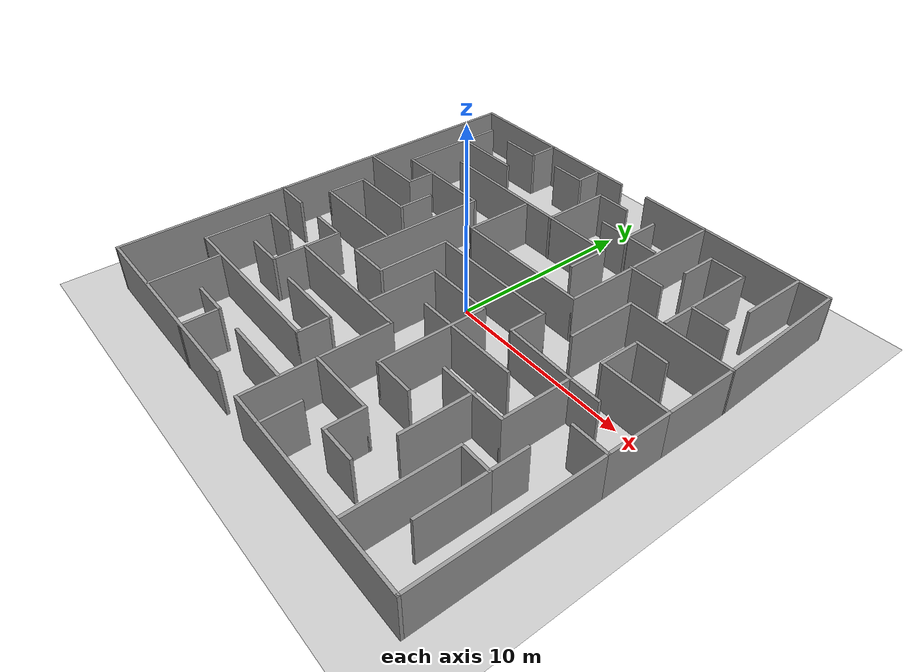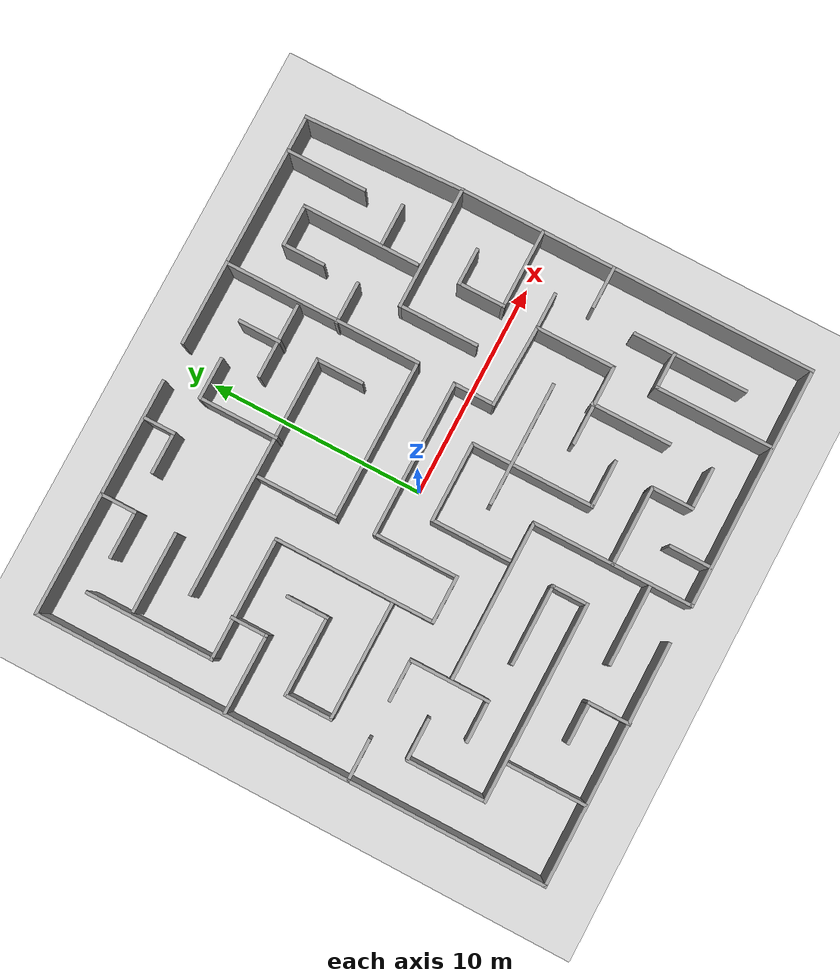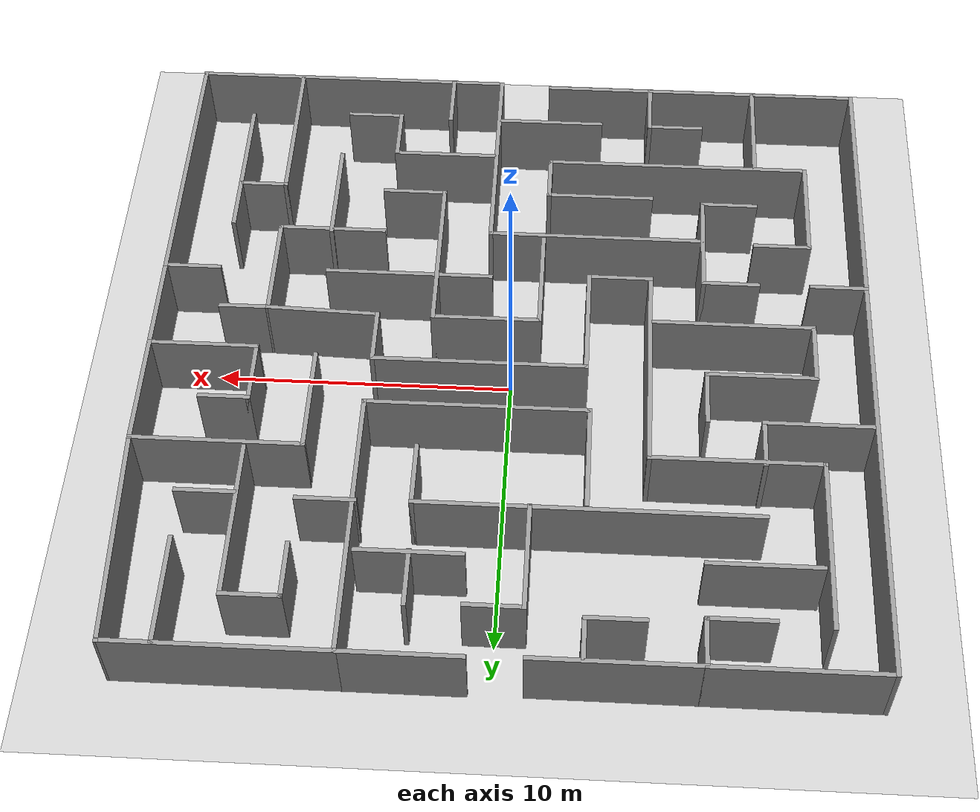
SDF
<sdf version="1.7">
 <world name="default">
  <light name="sun" type="directional">
   <pose>0 0 10 0 -0 0</pose>
   <diffuse>0.8 0.8 0.8 1</diffuse>
   <specular>0.2 0.2 0.2 1</specular>
   <attenuation>
    <range>1000</range>
    <constant>0.9</constant>
    <linear>0.01</linear>
    <quadratic>0.001</quadratic>
   </attenuation>
   <direction>-0.5 0.1 -0.9</direction>
   <spot><inner_angle>0</inner_angle><outer_angle>0</outer_angle><falloff>0</falloff></spot>
  </light>
  <model name="ground_plane">
   <static>1</static>
   <link name="link">
    <collision name="collision">
     <geometry><plane><normal>0 0 1</normal><size>100 100</size></plane></geometry>
     <surface><friction><ode><mu>100</mu><mu2>50</mu2></ode></friction></surface>
    </collision>
    <visual name="visual">
     <cast_shadows>0</cast_shadows>
     <geometry><plane><normal>0 0 1</normal><size>100 100</size></plane></geometry>
     <material>
      <script><uri>file://media/materials/scripts/gazebo.material</uri><name>Gazebo/Grey</name></script>
     </material>
    </visual>
   </link>
  </model>
  <gravity>0 0 -9.8</gravity>
  <magnetic_field>6e-06 2.3e-05 -4.2e-05</magnetic_field>
  <atmosphere type="adiabatic"/>
  <physics type="ode">
   <max_step_size>0.001</max_step_size>
   <real_time_factor>1</real_time_factor>
   <real_time_update_rate>1000</real_time_update_rate>
  </physics>
  <scene><ambient>0.4 0.4 0.4 1</ambient><background>0.7 0.7 0.7 1</background><shadows>1</shadows></scene>
  <audio><device>default</device></audio>
  <spherical_coordinates>
   <surface_model>EARTH_WGS84</surface_model>
   <latitude_deg>0</latitude_deg>
   <longitude_deg>0</longitude_deg>
   <elevation>0</elevation>
   <heading_deg>0</heading_deg>
  </spherical_coordinates>
  <model name="project2narrowed">
   <pose>0.024169 -0.346269 0 0 -0 0</pose>
   <link name="Wall_10">
    <collision name="Wall_10_Collision">
     <geometry><box><size>2 0.15 2.5</size></box></geometry>
     <pose>0 0 1.25 0 -0 0</pose>
    </collision>
    <visual name="Wall_10_Visual">
     <pose>0 0 1.25 0 -0 0</pose>
     <geometry><box><size>2 0.15 2.5</size></box></geometry>
     <material>
      <script><uri>file://media/materials/scripts/gazebo.material</uri><name>Gazebo/Grey</name></script>
      <ambient>1 1 1 1</ambient>
     </material>
     <meta><layer>0</layer></meta>
    </visual>
    <pose>-9.22593 -4.48458 0 0 -0 3.14159</pose>
   </link>
   <link name="Wall_101">
    <collision name="Wall_101_Collision">
     <geometry><box><size>2 0.15 2.5</size></box></geometry>
     <pose>0 0 1.25 0 -0 0</pose>
    </collision>
    <visual name="Wall_101_Visual">
     <pose>0 0 1.25 0 -0 0</pose>
     <geometry><box><size>2 0.15 2.5</size></box></geometry>
     <material>
      <script><uri>file://media/materials/scripts/gazebo.material</uri><name>Gazebo/Grey</name></script>
      <ambient>1 1 1 1</ambient>
     </material>
     <meta><layer>0</layer></meta>
    </visual>
    <pose>-0.022271 10.1757 0 0 -0 0</pose>
   </link>
   <link name="Wall_104">
    <collision name="Wall_104_Collision">
     <geometry><box><size>3.5 0.15 2.5</size></box></geometry>
     <pose>0 0 1.25 0 -0 0</pose>
    </collision>
    <visual name="Wall_104_Visual">
     <pose>0 0 1.25 0 -0 0</pose>
     <geometry><box><size>3.5 0.15 2.5</size></box></geometry>
     <material>
      <script><uri>file://media/materials/scripts/gazebo.material</uri><name>Gazebo/Grey</name></script>
      <ambient>1 1 1 1</ambient>
     </material>
     <meta><layer>0</layer></meta>
    </visual>
    <pose>2.69533 8.42693 0 0 -0 3.14159</pose>
   </link>
   <link name="Wall_106">
    <collision name="Wall_106_Collision">
     <geometry><box><size>2 0.15 2.5</size></box></geometry>
     <pose>0 0 1.25 0 -0 0</pose>
    </collision>
    <visual name="Wall_106_Visual">
     <pose>0 0 1.25 0 -0 0</pose>
     <geometry><box><size>2 0.15 2.5</size></box></geometry>
     <material>
      <script><uri>file://media/materials/scripts/gazebo.material</uri><name>Gazebo/Grey</name></script>
      <ambient>1 1 1 1</ambient>
     </material>
     <meta><layer>0</layer></meta>
    </visual>
    <pose>2.69297 9.31624 0 0 -0 1.5708</pose>
   </link>
   <link name="Wall_108">
    <collision name="Wall_108_Collision">
     <geometry><box><size>7.25 0.15 2.5</size></box></geometry>
     <pose>0 0 1.25 0 -0 0</pose>
    </collision>
    <visual name="Wall_108_Visual">
     <pose>0 0 1.25 0 -0 0</pose>
     <geometry><box><size>7.25 0.15 2.5</size></box></geometry>
     <material>
      <script><uri>file://media/materials/scripts/gazebo.material</uri><name>Gazebo/Grey</name></script>
      <ambient>1 1 1 1</ambient>
     </material>
     <meta><layer>0</layer></meta>
    </visual>
    <pose>8.1683 11.9284 0 0 -0 0</pose>
   </link>
   <link name="Wall_109">
    <collision name="Wall_109_Collision">
     <geometry><box><size>7.46577 0.15 2.5</size></box></geometry>
     <pose>0 0 1.25 0 -0 0</pose>
    </collision>
    <visual name="Wall_109_Visual">
     <pose>0 0 1.25 0 -0 0</pose>
     <geometry><box><size>7.46577 0.15 2.5</size></box></geometry>
     <material>
      <script><uri>file://media/materials/scripts/gazebo.material</uri><name>Gazebo/Grey</name></script>
      <ambient>1 1 1 1</ambient>
     </material>
     <meta><layer>0</layer></meta>
    </visual>
    <pose>11.8671 8.27351 0 0 -0 -1.5301</pose>
   </link>
   <link name="Wall_11">
    <collision name="Wall_11_Collision">
     <geometry><box><size>3.75 0.15 2.5</size></box></geometry>
     <pose>0 0 1.25 0 -0 0</pose>
    </collision>
    <visual name="Wall_11_Visual">
     <pose>0 0 1.25 0 -0 0</pose>
     <geometry><box><size>3.75 0.15 2.5</size></box></geometry>
     <material>
      <script><uri>file://media/materials/scripts/gazebo.material</uri><name>Gazebo/Grey</name></script>
      <ambient>1 1 1 1</ambient>
     </material>
     <meta><layer>0</layer></meta>
    </visual>
    <pose>-10.1509 -6.28458 0 0 -0 -1.5708</pose>
   </link>
   <link name="Wall_111">
    <collision name="Wall_111_Collision">
     <geometry><box><size>3.75 0.15 2.5</size></box></geometry>
     <pose>0 0 1.25 0 -0 0</pose>
    </collision>
    <visual name="Wall_111_Visual">
     <pose>0 0 1.25 0 -0 0</pose>
     <geometry><box><size>3.75 0.15 2.5</size></box></geometry>
     <material>
      <script><uri>file://media/materials/scripts/gazebo.material</uri><name>Gazebo/Grey</name></script>
      <ambient>1 1 1 1</ambient>
     </material>
     <meta><layer>0</layer></meta>
    </visual>
    <pose>10.0805 10.0887 0 0 -0 -1.5708</pose>
   </link>
   <link name="Wall_113">
    <collision name="Wall_113_Collision">
     <geometry><box><size>2 0.15 2.5</size></box></geometry>
     <pose>0 0 1.25 0 -0 0</pose>
    </collision>
    <visual name="Wall_113_Visual">
     <pose>0 0 1.25 0 -0 0</pose>
     <geometry><box><size>2 0.15 2.5</size></box></geometry>
     <material>
      <script><uri>file://media/materials/scripts/gazebo.material</uri><name>Gazebo/Grey</name></script>
      <ambient>1 1 1 1</ambient>
     </material>
     <meta><layer>0</layer></meta>
    </visual>
    <pose>6.44027 9.24486 0 0 -0 1.5708</pose>
   </link>
   <link name="Wall_114">
    <collision name="Wall_114_Collision">
     <geometry><box><size>2 0.15 2.5</size></box></geometry>
     <pose>0 0 1.25 0 -0 0</pose>
    </collision>
    <visual name="Wall_114_Visual">
     <pose>0 0 1.25 0 -0 0</pose>
     <geometry><box><size>2 0.15 2.5</size></box></geometry>
     <material>
      <script><uri>file://media/materials/scripts/gazebo.material</uri><name>Gazebo/Grey</name></script>
      <ambient>1 1 1 1</ambient>
     </material>
     <meta><layer>0</layer></meta>
    </visual>
    <pose>7.36527 10.1699 0 0 -0 0</pose>
   </link>
   <link name="Wall_115">
    <collision name="Wall_115_Collision">
     <geometry><box><size>5.5 0.15 2.5</size></box></geometry>
     <pose>0 0 1.25 0 -0 0</pose>
    </collision>
    <visual name="Wall_115_Visual">
     <pose>0 0 1.25 0 -0 0</pose>
     <geometry><box><size>5.5 0.15 2.5</size></box></geometry>
     <material>
      <script><uri>file://media/materials/scripts/gazebo.material</uri><name>Gazebo/Grey</name></script>
      <ambient>1 1 1 1</ambient>
     </material>
     <meta><layer>0</layer></meta>
    </visual>
    <pose>8.29027 7.49486 0 0 -0 -1.5708</pose>
   </link>
   <link name="Wall_117">
    <collision name="Wall_117_Collision">
     <geometry><box><size>2 0.15 2.5</size></box></geometry>
     <pose>0 0 1.25 0 -0 0</pose>
    </collision>
    <visual name="Wall_117_Visual">
     <pose>0 0 1.25 0 -0 0</pose>
     <geometry><box><size>2 0.15 2.5</size></box></geometry>
     <material>
      <script><uri>file://media/materials/scripts/gazebo.material</uri><name>Gazebo/Grey</name></script>
      <ambient>1 1 1 1</ambient>
     </material>
     <meta><layer>0</layer></meta>
    </visual>
    <pose>9.29245 6.53543 0 0 -0 0</pose>
   </link>
   <link name="Wall_119">
    <collision name="Wall_119_Collision">
     <geometry><box><size>2 0.15 2.5</size></box></geometry>
     <pose>0 0 1.25 0 -0 0</pose>
    </collision>
    <visual name="Wall_119_Visual">
     <pose>0 0 1.25 0 -0 0</pose>
     <geometry><box><size>2 0.15 2.5</size></box></geometry>
     <material>
      <script><uri>file://media/materials/scripts/gazebo.material</uri><name>Gazebo/Grey</name></script>
      <ambient>1 1 1 1</ambient>
     </material>
     <meta><layer>0</layer></meta>
    </visual>
    <pose>5.47377 6.6425 0 0 -0 0</pose>
   </link>
   <link name="Wall_12">
    <collision name="Wall_12_Collision">
     <geometry><box><size>9.25 0.15 2.5</size></box></geometry>
     <pose>0 0 1.25 0 -0 0</pose>
    </collision>
    <visual name="Wall_12_Visual">
     <pose>0 0 1.25 0 -0 0</pose>
     <geometry><box><size>9.25 0.15 2.5</size></box></geometry>
     <material>
      <script><uri>file://media/materials/scripts/gazebo.material</uri><name>Gazebo/Grey</name></script>
      <ambient>1 1 1 1</ambient>
     </material>
     <meta><layer>0</layer></meta>
    </visual>
    <pose>-5.60093 -8.08458 0 0 -0 0</pose>
   </link>
   <link name="Wall_122">
    <collision name="Wall_122_Collision">
     <geometry><box><size>2 0.15 2.5</size></box></geometry>
     <pose>0 0 1.25 0 -0 0</pose>
    </collision>
    <visual name="Wall_122_Visual">
     <pose>0 0 1.25 0 -0 0</pose>
     <geometry><box><size>2 0.15 2.5</size></box></geometry>
     <material>
      <script><uri>file://media/materials/scripts/gazebo.material</uri><name>Gazebo/Grey</name></script>
      <ambient>1 1 1 1</ambient>
     </material>
     <meta><layer>0</layer></meta>
    </visual>
    <pose>4.53111 0.132632 0 0 -0 -1.5708</pose>
   </link>
   <link name="Wall_123">
    <collision name="Wall_123_Collision">
     <geometry><box><size>3.88247 0.15 2.5</size></box></geometry>
     <pose>0 0 1.25 0 -0 0</pose>
    </collision>
    <visual name="Wall_123_Visual">
     <pose>0 0 1.25 0 -0 0</pose>
     <geometry><box><size>3.88247 0.15 2.5</size></box></geometry>
     <material>
      <script><uri>file://media/materials/scripts/gazebo.material</uri><name>Gazebo/Grey</name></script>
      <ambient>1 1 1 1</ambient>
     </material>
     <meta><layer>0</layer></meta>
    </visual>
    <pose>6.39646 -0.849941 0 0 -0 -0.030855</pose>
   </link>
   <link name="Wall_13">
    <collision name="Wall_13_Collision">
     <geometry><box><size>1.75 0.15 2.5</size></box></geometry>
     <pose>0 0 1.25 0 -0 0</pose>
    </collision>
    <visual name="Wall_13_Visual">
     <pose>0 0 1.25 0 -0 0</pose>
     <geometry><box><size>1.75 0.15 2.5</size></box></geometry>
     <material>
      <script><uri>file://media/materials/scripts/gazebo.material</uri><name>Gazebo/Grey</name></script>
      <ambient>1 1 1 1</ambient>
     </material>
     <meta><layer>0</layer></meta>
    </visual>
    <pose>-1.05093 -7.28458 0 0 -0 1.5708</pose>
   </link>
   <link name="Wall_14">
    <collision name="Wall_14_Collision">
     <geometry><box><size>3.75 0.15 2.5</size></box></geometry>
     <pose>0 0 1.25 0 -0 0</pose>
    </collision>
    <visual name="Wall_14_Visual">
     <pose>0 0 1.25 0 -0 0</pose>
     <geometry><box><size>3.75 0.15 2.5</size></box></geometry>
     <material>
      <script><uri>file://media/materials/scripts/gazebo.material</uri><name>Gazebo/Grey</name></script>
      <ambient>1 1 1 1</ambient>
     </material>
     <meta><layer>0</layer></meta>
    </visual>
    <pose>-2.85093 -6.48458 0 0 -0 3.14159</pose>
   </link>
   <link name="Wall_16">
    <collision name="Wall_16_Collision">
     <geometry><box><size>7.5 0.15 2.5</size></box></geometry>
     <pose>0 0 1.25 0 -0 0</pose>
    </collision>
    <visual name="Wall_16_Visual">
     <pose>0 0 1.25 0 -0 0</pose>
     <geometry><box><size>7.5 0.15 2.5</size></box></geometry>
     <material>
      <script><uri>file://media/materials/scripts/gazebo.material</uri><name>Gazebo/Grey</name></script>
      <ambient>1 1 1 1</ambient>
     </material>
     <meta><layer>0</layer></meta>
    </visual>
    <pose>-2.75908 -4.58135 0 0 -0 0</pose>
   </link>
   <link name="Wall_17">
    <collision name="Wall_17_Collision">
     <geometry><box><size>7.5 0.15 2.5</size></box></geometry>
     <pose>0 0 1.25 0 -0 0</pose>
    </collision>
    <visual name="Wall_17_Visual">
     <pose>0 0 1.25 0 -0 0</pose>
     <geometry><box><size>7.5 0.15 2.5</size></box></geometry>
     <material>
      <script><uri>file://media/materials/scripts/gazebo.material</uri><name>Gazebo/Grey</name></script>
      <ambient>1 1 1 1</ambient>
     </material>
     <meta><layer>0</layer></meta>
    </visual>
    <pose>0.915924 -8.25635 0 0 -0 -1.5708</pose>
   </link>
   <link name="Wall_18">
    <collision name="Wall_18_Collision">
     <geometry><box><size>11.25 0.15 2.5</size></box></geometry>
     <pose>0 0 1.25 0 -0 0</pose>
    </collision>
    <visual name="Wall_18_Visual">
     <pose>0 0 1.25 0 -0 0</pose>
     <geometry><box><size>11.25 0.15 2.5</size></box></geometry>
     <material>
      <script><uri>file://media/materials/scripts/gazebo.material</uri><name>Gazebo/Grey</name></script>
      <ambient>1 1 1 1</ambient>
     </material>
     <meta><layer>0</layer></meta>
    </visual>
    <pose>6.46592 -11.9314 0 0 -0 0</pose>
   </link>
   <link name="Wall_19">
    <collision name="Wall_19_Collision">
     <geometry><box><size>9.5 0.15 2.5</size></box></geometry>
     <pose>0 0 1.25 0 -0 0</pose>
    </collision>
    <visual name="Wall_19_Visual">
     <pose>0 0 1.25 0 -0 0</pose>
     <geometry><box><size>9.5 0.15 2.5</size></box></geometry>
     <material>
      <script><uri>file://media/materials/scripts/gazebo.material</uri><name>Gazebo/Grey</name></script>
      <ambient>1 1 1 1</ambient>
     </material>
     <meta><layer>0</layer></meta>
    </visual>
    <pose>12.0159 -7.25635 0 0 -0 1.5708</pose>
   </link>
   <link name="Wall_2">
    <collision name="Wall_2_Collision">
     <geometry><box><size>11.25 0.15 2.5</size></box></geometry>
     <pose>0 0 1.25 0 -0 0</pose>
    </collision>
    <visual name="Wall_2_Visual">
     <pose>0 0 1.25 0 -0 0</pose>
     <geometry><box><size>11.25 0.15 2.5</size></box></geometry>
     <material>
      <script><uri>file://media/materials/scripts/gazebo.material</uri><name>Gazebo/Grey</name></script>
      <ambient>1 1 1 1</ambient>
     </material>
     <meta><layer>0</layer></meta>
    </visual>
    <pose>-6.46891 -11.8301 0 0 -0 3.14159</pose>
   </link>
   <link name="Wall_20">
    <collision name="Wall_20_Collision">
     <geometry><box><size>2 0.15 2.5</size></box></geometry>
     <pose>0 0 1.25 0 -0 0</pose>
    </collision>
    <visual name="Wall_20_Visual">
     <pose>0 0 1.25 0 -0 0</pose>
     <geometry><box><size>2 0.15 2.5</size></box></geometry>
     <material>
      <script><uri>file://media/materials/scripts/gazebo.material</uri><name>Gazebo/Grey</name></script>
      <ambient>1 1 1 1</ambient>
     </material>
     <meta><layer>0</layer></meta>
    </visual>
    <pose>11.0909 -2.58135 0 0 -0 3.14159</pose>
   </link>
   <link name="Wall_22">
    <collision name="Wall_22_Collision">
     <geometry><box><size>2 0.15 2.5</size></box></geometry>
     <pose>0 0 1.25 0 -0 0</pose>
    </collision>
    <visual name="Wall_22_Visual">
     <pose>0 0 1.25 0 -0 0</pose>
     <geometry><box><size>2 0.15 2.5</size></box></geometry>
     <material>
      <script><uri>file://media/materials/scripts/gazebo.material</uri><name>Gazebo/Grey</name></script>
      <ambient>1 1 1 1</ambient>
     </material>
     <meta><layer>0</layer></meta>
    </visual>
    <pose>-4.59866 -10.9368 0 0 -0 1.5708</pose>
   </link>
   <link name="Wall_23">
    <collision name="Wall_23_Collision">
     <geometry><box><size>2 0.15 2.5</size></box></geometry>
     <pose>0 0 1.25 0 -0 0</pose>
    </collision>
    <visual name="Wall_23_Visual">
     <pose>0 0 1.25 0 -0 0</pose>
     <geometry><box><size>2 0.15 2.5</size></box></geometry>
     <material>
      <script><uri>file://media/materials/scripts/gazebo.material</uri><name>Gazebo/Grey</name></script>
      <ambient>1 1 1 1</ambient>
     </material>
     <meta><layer>0</layer></meta>
    </visual>
    <pose>-5.52366 -10.0118 0 0 -0 3.14159</pose>
   </link>
   <link name="Wall_25">
    <collision name="Wall_25_Collision">
     <geometry><box><size>3.75 0.15 2.5</size></box></geometry>
     <pose>0 0 1.25 0 -0 0</pose>
    </collision>
    <visual name="Wall_25_Visual">
     <pose>0 0 1.25 0 -0 0</pose>
     <geometry><box><size>3.75 0.15 2.5</size></box></geometry>
     <material>
      <script><uri>file://media/materials/scripts/gazebo.material</uri><name>Gazebo/Grey</name></script>
      <ambient>1 1 1 1</ambient>
     </material>
     <meta><layer>0</layer></meta>
    </visual>
    <pose>-8.37146 -9.97061 0 0 -0 -1.5708</pose>
   </link>
   <link name="Wall_27">
    <collision name="Wall_27_Collision">
     <geometry><box><size>3.75 0.15 2.5</size></box></geometry>
     <pose>0 0 1.25 0 -0 0</pose>
    </collision>
    <visual name="Wall_27_Visual">
     <pose>0 0 1.25 0 -0 0</pose>
     <geometry><box><size>3.75 0.15 2.5</size></box></geometry>
     <material>
      <script><uri>file://media/materials/scripts/gazebo.material</uri><name>Gazebo/Grey</name></script>
      <ambient>1 1 1 1</ambient>
     </material>
     <meta><layer>0</layer></meta>
    </visual>
    <pose>-0.983642 -10.0468 0 0 -0 0</pose>
   </link>
   <link name="Wall_29">
    <collision name="Wall_29_Collision">
     <geometry><box><size>3.75 0.15 2.5</size></box></geometry>
     <pose>0 0 1.25 0 -0 0</pose>
    </collision>
    <visual name="Wall_29_Visual">
     <pose>0 0 1.25 0 -0 0</pose>
     <geometry><box><size>3.75 0.15 2.5</size></box></geometry>
     <material>
      <script><uri>file://media/materials/scripts/gazebo.material</uri><name>Gazebo/Grey</name></script>
      <ambient>1 1 1 1</ambient>
     </material>
     <meta><layer>0</layer></meta>
    </visual>
    <pose>2.71961 -8.25698 0 0 -0 0</pose>
   </link>
   <link name="Wall_3">
    <collision name="Wall_3_Collision">
     <geometry><box><size>9.25 0.15 2.5</size></box></geometry>
     <pose>0 0 1.25 0 -0 0</pose>
    </collision>
    <visual name="Wall_3_Visual">
     <pose>0 0 1.25 0 -0 0</pose>
     <geometry><box><size>9.25 0.15 2.5</size></box></geometry>
     <material>
      <script><uri>file://media/materials/scripts/gazebo.material</uri><name>Gazebo/Grey</name></script>
      <ambient>1 1 1 1</ambient>
     </material>
     <meta><layer>0</layer></meta>
    </visual>
    <pose>-12.0189 -7.28009 0 0 -0 1.5708</pose>
   </link>
   <link name="Wall_30">
    <collision name="Wall_30_Collision">
     <geometry><box><size>2 0.15 2.5</size></box></geometry>
     <pose>0 0 1.25 0 -0 0</pose>
    </collision>
    <visual name="Wall_30_Visual">
     <pose>0 0 1.25 0 -0 0</pose>
     <geometry><box><size>2 0.15 2.5</size></box></geometry>
     <material>
      <script><uri>file://media/materials/scripts/gazebo.material</uri><name>Gazebo/Grey</name></script>
      <ambient>1 1 1 1</ambient>
     </material>
     <meta><layer>0</layer></meta>
    </visual>
    <pose>4.51961 -9.18198 0 0 -0 -1.5708</pose>
   </link>
   <link name="Wall_31">
    <collision name="Wall_31_Collision">
     <geometry><box><size>2 0.15 2.5</size></box></geometry>
     <pose>0 0 1.25 0 -0 0</pose>
    </collision>
    <visual name="Wall_31_Visual">
     <pose>0 0 1.25 0 -0 0</pose>
     <geometry><box><size>2 0.15 2.5</size></box></geometry>
     <material>
      <script><uri>file://media/materials/scripts/gazebo.material</uri><name>Gazebo/Grey</name></script>
      <ambient>1 1 1 1</ambient>
     </material>
     <meta><layer>0</layer></meta>
    </visual>
    <pose>5.44461 -10.107 0 0 -0 0</pose>
   </link>
   <link name="Wall_33">
    <collision name="Wall_33_Collision">
     <geometry><box><size>2 0.15 2.5</size></box></geometry>
     <pose>0 0 1.25 0 -0 0</pose>
    </collision>
    <visual name="Wall_33_Visual">
     <pose>0 0 1.25 0 -0 0</pose>
     <geometry><box><size>2 0.15 2.5</size></box></geometry>
     <material>
      <script><uri>file://media/materials/scripts/gazebo.material</uri><name>Gazebo/Grey</name></script>
      <ambient>1 1 1 1</ambient>
     </material>
     <meta><layer>0</layer></meta>
    </visual>
    <pose>2.69894 -10.9642 0 0 -0 -1.5708</pose>
   </link>
   <link name="Wall_35">
    <collision name="Wall_35_Collision">
     <geometry><box><size>3.75 0.15 2.5</size></box></geometry>
     <pose>0 0 1.25 0 -0 0</pose>
    </collision>
    <visual name="Wall_35_Visual">
     <pose>0 0 1.25 0 -0 0</pose>
     <geometry><box><size>3.75 0.15 2.5</size></box></geometry>
     <material>
      <script><uri>file://media/materials/scripts/gazebo.material</uri><name>Gazebo/Grey</name></script>
      <ambient>1 1 1 1</ambient>
     </material>
     <meta><layer>0</layer></meta>
    </visual>
    <pose>-0.941303 -2.60045 0 0 -0 1.5708</pose>
   </link>
   <link name="Wall_36">
    <collision name="Wall_36_Collision">
     <geometry><box><size>3.75 0.15 2.5</size></box></geometry>
     <pose>0 0 1.25 0 -0 0</pose>
    </collision>
    <visual name="Wall_36_Visual">
     <pose>0 0 1.25 0 -0 0</pose>
     <geometry><box><size>3.75 0.15 2.5</size></box></geometry>
     <material>
      <script><uri>file://media/materials/scripts/gazebo.material</uri><name>Gazebo/Grey</name></script>
      <ambient>1 1 1 1</ambient>
     </material>
     <meta><layer>0</layer></meta>
    </visual>
    <pose>0.858697 -0.800448 0 0 -0 0</pose>
   </link>
   <link name="Wall_37">
    <collision name="Wall_37_Collision">
     <geometry><box><size>5.75 0.15 2.5</size></box></geometry>
     <pose>0 0 1.25 0 -0 0</pose>
    </collision>
    <visual name="Wall_37_Visual">
     <pose>0 0 1.25 0 -0 0</pose>
     <geometry><box><size>5.75 0.15 2.5</size></box></geometry>
     <material>
      <script><uri>file://media/materials/scripts/gazebo.material</uri><name>Gazebo/Grey</name></script>
      <ambient>1 1 1 1</ambient>
     </material>
     <meta><layer>0</layer></meta>
    </visual>
    <pose>2.6587 -3.60045 0 0 -0 -1.5708</pose>
   </link>
   <link name="Wall_38">
    <collision name="Wall_38_Collision">
     <geometry><box><size>2.25 0.15 2.5</size></box></geometry>
     <pose>0 0 1.25 0 -0 0</pose>
    </collision>
    <visual name="Wall_38_Visual">
     <pose>0 0 1.25 0 -0 0</pose>
     <geometry><box><size>2.25 0.15 2.5</size></box></geometry>
     <material>
      <script><uri>file://media/materials/scripts/gazebo.material</uri><name>Gazebo/Grey</name></script>
      <ambient>1 1 1 1</ambient>
     </material>
     <meta><layer>0</layer></meta>
    </visual>
    <pose>3.7087 -6.40045 0 0 -0 0</pose>
   </link>
   <link name="Wall_4">
    <collision name="Wall_4_Collision">
     <geometry><box><size>2 0.15 2.5</size></box></geometry>
     <pose>0 0 1.25 0 -0 0</pose>
    </collision>
    <visual name="Wall_4_Visual">
     <pose>0 0 1.25 0 -0 0</pose>
     <geometry><box><size>2 0.15 2.5</size></box></geometry>
     <material>
      <script><uri>file://media/materials/scripts/gazebo.material</uri><name>Gazebo/Grey</name></script>
      <ambient>1 1 1 1</ambient>
     </material>
     <meta><layer>0</layer></meta>
    </visual>
    <pose>-11.0939 -2.73009 0 0 -0 0</pose>
   </link>
   <link name="Wall_40">
    <collision name="Wall_40_Collision">
     <geometry><box><size>5.75 0.15 2.5</size></box></geometry>
     <pose>0 0 1.25 0 -0 0</pose>
    </collision>
    <visual name="Wall_40_Visual">
     <pose>0 0 1.25 0 -0 0</pose>
     <geometry><box><size>5.75 0.15 2.5</size></box></geometry>
     <material>
      <script><uri>file://media/materials/scripts/gazebo.material</uri><name>Gazebo/Grey</name></script>
      <ambient>1 1 1 1</ambient>
     </material>
     <meta><layer>0</layer></meta>
    </visual>
    <pose>3.60744 -2.61602 0 0 -0 0</pose>
   </link>
   <link name="Wall_42">
    <collision name="Wall_42_Collision">
     <geometry><box><size>3.75 0.15 2.5</size></box></geometry>
     <pose>0 0 1.25 0 -0 0</pose>
    </collision>
    <visual name="Wall_42_Visual">
     <pose>0 0 1.25 0 -0 0</pose>
     <geometry><box><size>3.75 0.15 2.5</size></box></geometry>
     <material>
      <script><uri>file://media/materials/scripts/gazebo.material</uri><name>Gazebo/Grey</name></script>
      <ambient>1 1 1 1</ambient>
     </material>
     <meta><layer>0</layer></meta>
    </visual>
    <pose>6.46181 -4.50751 0 0 -0 0</pose>
   </link>
   <link name="Wall_43">
    <collision name="Wall_43_Collision">
     <geometry><box><size>3.75 0.15 2.5</size></box></geometry>
     <pose>0 0 1.25 0 -0 0</pose>
    </collision>
    <visual name="Wall_43_Visual">
     <pose>0 0 1.25 0 -0 0</pose>
     <geometry><box><size>3.75 0.15 2.5</size></box></geometry>
     <material>
      <script><uri>file://media/materials/scripts/gazebo.material</uri><name>Gazebo/Grey</name></script>
      <ambient>1 1 1 1</ambient>
     </material>
     <meta><layer>0</layer></meta>
    </visual>
    <pose>8.26181 -2.70751 0 0 -0 1.5708</pose>
   </link>
   <link name="Wall_44">
    <collision name="Wall_44_Collision">
     <geometry><box><size>1.75 0.15 2.5</size></box></geometry>
     <pose>0 0 1.25 0 -0 0</pose>
    </collision>
    <visual name="Wall_44_Visual">
     <pose>0 0 1.25 0 -0 0</pose>
     <geometry><box><size>1.75 0.15 2.5</size></box></geometry>
     <material>
      <script><uri>file://media/materials/scripts/gazebo.material</uri><name>Gazebo/Grey</name></script>
      <ambient>1 1 1 1</ambient>
     </material>
     <meta><layer>0</layer></meta>
    </visual>
    <pose>9.06181 -0.907514 0 0 -0 0</pose>
   </link>
   <link name="Wall_46">
    <collision name="Wall_46_Collision">
     <geometry><box><size>3.75 0.15 2.5</size></box></geometry>
     <pose>0 0 1.25 0 -0 0</pose>
    </collision>
    <visual name="Wall_46_Visual">
     <pose>0 0 1.25 0 -0 0</pose>
     <geometry><box><size>3.75 0.15 2.5</size></box></geometry>
     <material>
      <script><uri>file://media/materials/scripts/gazebo.material</uri><name>Gazebo/Grey</name></script>
      <ambient>1 1 1 1</ambient>
     </material>
     <meta><layer>0</layer></meta>
    </visual>
    <pose>6.48193 -6.23614 0 0 -0 -1.5708</pose>
   </link>
   <link name="Wall_48">
    <collision name="Wall_48_Collision">
     <geometry><box><size>5.5 0.15 2.5</size></box></geometry>
     <pose>0 0 1.25 0 -0 0</pose>
    </collision>
    <visual name="Wall_48_Visual">
     <pose>0 0 1.25 0 -0 0</pose>
     <geometry><box><size>5.5 0.15 2.5</size></box></geometry>
     <material>
      <script><uri>file://media/materials/scripts/gazebo.material</uri><name>Gazebo/Grey</name></script>
      <ambient>1 1 1 1</ambient>
     </material>
     <meta><layer>0</layer></meta>
    </visual>
    <pose>8.34824 -9.17733 0 0 -0 1.5708</pose>
   </link>
   <link name="Wall_49">
    <collision name="Wall_49_Collision">
     <geometry><box><size>1.75 0.15 2.5</size></box></geometry>
     <pose>0 0 1.25 0 -0 0</pose>
    </collision>
    <visual name="Wall_49_Visual">
     <pose>0 0 1.25 0 -0 0</pose>
     <geometry><box><size>1.75 0.15 2.5</size></box></geometry>
     <material>
      <script><uri>file://media/materials/scripts/gazebo.material</uri><name>Gazebo/Grey</name></script>
      <ambient>1 1 1 1</ambient>
     </material>
     <meta><layer>0</layer></meta>
    </visual>
    <pose>9.14824 -6.50233 0 0 -0 0</pose>
   </link>
   <link name="Wall_50">
    <collision name="Wall_50_Collision">
     <geometry><box><size>3.5 0.15 2.5</size></box></geometry>
     <pose>0 0 1.25 0 -0 0</pose>
    </collision>
    <visual name="Wall_50_Visual">
     <pose>0 0 1.25 0 -0 0</pose>
     <geometry><box><size>3.5 0.15 2.5</size></box></geometry>
     <material>
      <script><uri>file://media/materials/scripts/gazebo.material</uri><name>Gazebo/Grey</name></script>
      <ambient>1 1 1 1</ambient>
     </material>
     <meta><layer>0</layer></meta>
    </visual>
    <pose>9.94824 -8.17733 0 0 -0 -1.5708</pose>
   </link>
   <link name="Wall_52">
    <collision name="Wall_52_Collision">
     <geometry><box><size>2 0.15 2.5</size></box></geometry>
     <pose>0 0 1.25 0 -0 0</pose>
    </collision>
    <visual name="Wall_52_Visual">
     <pose>0 0 1.25 0 -0 0</pose>
     <geometry><box><size>2 0.15 2.5</size></box></geometry>
     <material>
      <script><uri>file://media/materials/scripts/gazebo.material</uri><name>Gazebo/Grey</name></script>
      <ambient>1 1 1 1</ambient>
     </material>
     <meta><layer>0</layer></meta>
    </visual>
    <pose>9.94824 -5.57733 0 0 -0 1.5708</pose>
   </link>
   <link name="Wall_54">
    <collision name="Wall_54_Collision">
     <geometry><box><size>3.5 0.15 2.5</size></box></geometry>
     <pose>0 0 1.25 0 -0 0</pose>
    </collision>
    <visual name="Wall_54_Visual">
     <pose>0 0 1.25 0 -0 0</pose>
     <geometry><box><size>3.5 0.15 2.5</size></box></geometry>
     <material>
      <script><uri>file://media/materials/scripts/gazebo.material</uri><name>Gazebo/Grey</name></script>
      <ambient>1 1 1 1</ambient>
     </material>
     <meta><layer>0</layer></meta>
    </visual>
    <pose>12.0159 -0.906352 0 0 -0 1.5708</pose>
   </link>
   <link name="Wall_55">
    <collision name="Wall_55_Collision">
     <geometry><box><size>3.75 0.15 2.5</size></box></geometry>
     <pose>0 0 1.25 0 -0 0</pose>
    </collision>
    <visual name="Wall_55_Visual">
     <pose>0 0 1.25 0 -0 0</pose>
     <geometry><box><size>3.75 0.15 2.5</size></box></geometry>
     <material>
      <script><uri>file://media/materials/scripts/gazebo.material</uri><name>Gazebo/Grey</name></script>
      <ambient>1 1 1 1</ambient>
     </material>
     <meta><layer>0</layer></meta>
    </visual>
    <pose>10.2159 0.768648 0 0 -0 3.14159</pose>
   </link>
   <link name="Wall_56">
    <collision name="Wall_56_Collision">
     <geometry><box><size>2.25 0.15 2.5</size></box></geometry>
     <pose>0 0 1.25 0 -0 0</pose>
    </collision>
    <visual name="Wall_56_Visual">
     <pose>0 0 1.25 0 -0 0</pose>
     <geometry><box><size>2.25 0.15 2.5</size></box></geometry>
     <material>
      <script><uri>file://media/materials/scripts/gazebo.material</uri><name>Gazebo/Grey</name></script>
      <ambient>1 1 1 1</ambient>
     </material>
     <meta><layer>0</layer></meta>
    </visual>
    <pose>8.41592 1.81865 0 0 -0 1.5708</pose>
   </link>
   <link name="Wall_57">
    <collision name="Wall_57_Collision">
     <geometry><box><size>1.75 0.15 2.5</size></box></geometry>
     <pose>0 0 1.25 0 -0 0</pose>
    </collision>
    <visual name="Wall_57_Visual">
     <pose>0 0 1.25 0 -0 0</pose>
     <geometry><box><size>1.75 0.15 2.5</size></box></geometry>
     <material>
      <script><uri>file://media/materials/scripts/gazebo.material</uri><name>Gazebo/Grey</name></script>
      <ambient>1 1 1 1</ambient>
     </material>
     <meta><layer>0</layer></meta>
    </visual>
    <pose>9.21592 2.86865 0 0 -0 0</pose>
   </link>
   <link name="Wall_59">
    <collision name="Wall_59_Collision">
     <geometry><box><size>4 0.15 2.5</size></box></geometry>
     <pose>0 0 1.25 0 -0 0</pose>
    </collision>
    <visual name="Wall_59_Visual">
     <pose>0 0 1.25 0 -0 0</pose>
     <geometry><box><size>4 0.15 2.5</size></box></geometry>
     <material>
      <script><uri>file://media/materials/scripts/gazebo.material</uri><name>Gazebo/Grey</name></script>
      <ambient>1 1 1 1</ambient>
     </material>
     <meta><layer>0</layer></meta>
    </visual>
    <pose>12.0159 2.69365 0 0 -0 1.5708</pose>
   </link>
   <link name="Wall_6">
    <collision name="Wall_6_Collision">
     <geometry><box><size>2 0.15 2.5</size></box></geometry>
     <pose>0 0 1.25 0 -0 0</pose>
    </collision>
    <visual name="Wall_6_Visual">
     <pose>0 0 1.25 0 -0 0</pose>
     <geometry><box><size>2 0.15 2.5</size></box></geometry>
     <material>
      <script><uri>file://media/materials/scripts/gazebo.material</uri><name>Gazebo/Grey</name></script>
      <ambient>1 1 1 1</ambient>
     </material>
     <meta><layer>0</layer></meta>
    </visual>
    <pose>-7.40652 -2.71034 0 0 -0 0</pose>
   </link>
   <link name="Wall_60">
    <collision name="Wall_60_Collision">
     <geometry><box><size>5.75 0.15 2.5</size></box></geometry>
     <pose>0 0 1.25 0 -0 0</pose>
    </collision>
    <visual name="Wall_60_Visual">
     <pose>0 0 1.25 0 -0 0</pose>
     <geometry><box><size>5.75 0.15 2.5</size></box></geometry>
     <material>
      <script><uri>file://media/materials/scripts/gazebo.material</uri><name>Gazebo/Grey</name></script>
      <ambient>1 1 1 1</ambient>
     </material>
     <meta><layer>0</layer></meta>
    </visual>
    <pose>9.21592 4.61865 0 0 -0 3.14159</pose>
   </link>
   <link name="Wall_61">
    <collision name="Wall_61_Collision">
     <geometry><box><size>3.75 0.15 2.5</size></box></geometry>
     <pose>0 0 1.25 0 -0 0</pose>
    </collision>
    <visual name="Wall_61_Visual">
     <pose>0 0 1.25 0 -0 0</pose>
     <geometry><box><size>3.75 0.15 2.5</size></box></geometry>
     <material>
      <script><uri>file://media/materials/scripts/gazebo.material</uri><name>Gazebo/Grey</name></script>
      <ambient>1 1 1 1</ambient>
     </material>
     <meta><layer>0</layer></meta>
    </visual>
    <pose>6.41592 2.81865 0 0 -0 -1.5708</pose>
   </link>
   <link name="Wall_63">
    <collision name="Wall_63_Collision">
     <geometry><box><size>7.25 0.15 2.5</size></box></geometry>
     <pose>0 0 1.25 0 -0 0</pose>
    </collision>
    <visual name="Wall_63_Visual">
     <pose>0 0 1.25 0 -0 0</pose>
     <geometry><box><size>7.25 0.15 2.5</size></box></geometry>
     <material>
      <script><uri>file://media/materials/scripts/gazebo.material</uri><name>Gazebo/Grey</name></script>
      <ambient>1 1 1 1</ambient>
     </material>
     <meta><layer>0</layer></meta>
    </visual>
    <pose>0.981112 1.05763 0 0 -0 3.14159</pose>
   </link>
   <link name="Wall_64">
    <collision name="Wall_64_Collision">
     <geometry><box><size>4 0.15 2.5</size></box></geometry>
     <pose>0 0 1.25 0 -0 0</pose>
    </collision>
    <visual name="Wall_64_Visual">
     <pose>0 0 1.25 0 -0 0</pose>
     <geometry><box><size>4 0.15 2.5</size></box></geometry>
     <material>
      <script><uri>file://media/materials/scripts/gazebo.material</uri><name>Gazebo/Grey</name></script>
      <ambient>1 1 1 1</ambient>
     </material>
     <meta><layer>0</layer></meta>
    </visual>
    <pose>-2.56889 -0.867368 0 0 -0 -1.5708</pose>
   </link>
   <link name="Wall_65">
    <collision name="Wall_65_Collision">
     <geometry><box><size>2.25 0.15 2.5</size></box></geometry>
     <pose>0 0 1.25 0 -0 0</pose>
    </collision>
    <visual name="Wall_65_Visual">
     <pose>0 0 1.25 0 -0 0</pose>
     <geometry><box><size>2.25 0.15 2.5</size></box></geometry>
     <material>
      <script><uri>file://media/materials/scripts/gazebo.material</uri><name>Gazebo/Grey</name></script>
      <ambient>1 1 1 1</ambient>
     </material>
     <meta><layer>0</layer></meta>
    </visual>
    <pose>-3.61889 -2.79237 0 0 -0 3.14159</pose>
   </link>
   <link name="Wall_66">
    <collision name="Wall_66_Collision">
     <geometry><box><size>7.5 0.15 2.5</size></box></geometry>
     <pose>0 0 1.25 0 -0 0</pose>
    </collision>
    <visual name="Wall_66_Visual">
     <pose>0 0 1.25 0 -0 0</pose>
     <geometry><box><size>7.5 0.15 2.5</size></box></geometry>
     <material>
      <script><uri>file://media/materials/scripts/gazebo.material</uri><name>Gazebo/Grey</name></script>
      <ambient>1 1 1 1</ambient>
     </material>
     <meta><layer>0</layer></meta>
    </visual>
    <pose>-4.66889 0.882632 0 0 -0 1.5708</pose>
   </link>
   <link name="Wall_67">
    <collision name="Wall_67_Collision">
     <geometry><box><size>5.75 0.15 2.5</size></box></geometry>
     <pose>0 0 1.25 0 -0 0</pose>
    </collision>
    <visual name="Wall_67_Visual">
     <pose>0 0 1.25 0 -0 0</pose>
     <geometry><box><size>5.75 0.15 2.5</size></box></geometry>
     <material>
      <script><uri>file://media/materials/scripts/gazebo.material</uri><name>Gazebo/Grey</name></script>
      <ambient>1 1 1 1</ambient>
     </material>
     <meta><layer>0</layer></meta>
    </visual>
    <pose>-7.46889 4.55763 0 0 -0 3.14159</pose>
   </link>
   <link name="Wall_68">
    <collision name="Wall_68_Collision">
     <geometry><box><size>6 0.15 2.5</size></box></geometry>
     <pose>0 0 1.25 0 -0 0</pose>
    </collision>
    <visual name="Wall_68_Visual">
     <pose>0 0 1.25 0 -0 0</pose>
     <geometry><box><size>6 0.15 2.5</size></box></geometry>
     <material>
      <script><uri>file://media/materials/scripts/gazebo.material</uri><name>Gazebo/Grey</name></script>
      <ambient>1 1 1 1</ambient>
     </material>
     <meta><layer>0</layer></meta>
    </visual>
    <pose>-10.2689 7.48263 0 0 -0 1.5708</pose>
   </link>
   <link name="Wall_7">
    <collision name="Wall_7_Collision">
     <geometry><box><size>3.75 0.15 2.5</size></box></geometry>
     <pose>0 0 1.25 0 -0 0</pose>
    </collision>
    <visual name="Wall_7_Visual">
     <pose>0 0 1.25 0 -0 0</pose>
     <geometry><box><size>3.75 0.15 2.5</size></box></geometry>
     <material>
      <script><uri>file://media/materials/scripts/gazebo.material</uri><name>Gazebo/Grey</name></script>
      <ambient>1 1 1 1</ambient>
     </material>
     <meta><layer>0</layer></meta>
    </visual>
    <pose>-6.48152 -4.51034 0 0 -0 -1.5708</pose>
   </link>
   <link name="Wall_70">
    <collision name="Wall_70_Collision">
     <geometry><box><size>2 0.15 2.5</size></box></geometry>
     <pose>0 0 1.25 0 -0 0</pose>
    </collision>
    <visual name="Wall_70_Visual">
     <pose>0 0 1.25 0 -0 0</pose>
     <geometry><box><size>2 0.15 2.5</size></box></geometry>
     <material>
      <script><uri>file://media/materials/scripts/gazebo.material</uri><name>Gazebo/Grey</name></script>
      <ambient>1 1 1 1</ambient>
     </material>
     <meta><layer>0</layer></meta>
    </visual>
    <pose>-6.54787 2.08775 0 0 -0 -1.5708</pose>
   </link>
   <link name="Wall_71">
    <collision name="Wall_71_Collision">
     <geometry><box><size>3.75 0.15 2.5</size></box></geometry>
     <pose>0 0 1.25 0 -0 0</pose>
    </collision>
    <visual name="Wall_71_Visual">
     <pose>0 0 1.25 0 -0 0</pose>
     <geometry><box><size>3.75 0.15 2.5</size></box></geometry>
     <material>
      <script><uri>file://media/materials/scripts/gazebo.material</uri><name>Gazebo/Grey</name></script>
      <ambient>1 1 1 1</ambient>
     </material>
     <meta><layer>0</layer></meta>
    </visual>
    <pose>-8.34787 1.16275 0 0 -0 3.14159</pose>
   </link>
   <link name="Wall_72">
    <collision name="Wall_72_Collision">
     <geometry><box><size>2.25 0.15 2.5</size></box></geometry>
     <pose>0 0 1.25 0 -0 0</pose>
    </collision>
    <visual name="Wall_72_Visual">
     <pose>0 0 1.25 0 -0 0</pose>
     <geometry><box><size>2.25 0.15 2.5</size></box></geometry>
     <material>
      <script><uri>file://media/materials/scripts/gazebo.material</uri><name>Gazebo/Grey</name></script>
      <ambient>1 1 1 1</ambient>
     </material>
     <meta><layer>0</layer></meta>
    </visual>
    <pose>-10.1479 0.112747 0 0 -0 -1.5708</pose>
   </link>
   <link name="Wall_73">
    <collision name="Wall_73_Collision">
     <geometry><box><size>5.5 0.15 2.5</size></box></geometry>
     <pose>0 0 1.25 0 -0 0</pose>
    </collision>
    <visual name="Wall_73_Visual">
     <pose>0 0 1.25 0 -0 0</pose>
     <geometry><box><size>5.5 0.15 2.5</size></box></geometry>
     <material>
      <script><uri>file://media/materials/scripts/gazebo.material</uri><name>Gazebo/Grey</name></script>
      <ambient>1 1 1 1</ambient>
     </material>
     <meta><layer>0</layer></meta>
    </visual>
    <pose>-7.47287 -0.937253 0 0 -0 0</pose>
   </link>
   <link name="Wall_75">
    <collision name="Wall_75_Collision">
     <geometry><box><size>1.75 0.15 2.5</size></box></geometry>
     <pose>0 0 1.25 0 -0 0</pose>
    </collision>
    <visual name="Wall_75_Visual">
     <pose>0 0 1.25 0 -0 0</pose>
     <geometry><box><size>1.75 0.15 2.5</size></box></geometry>
     <material>
      <script><uri>file://media/materials/scripts/gazebo.material</uri><name>Gazebo/Grey</name></script>
      <ambient>1 1 1 1</ambient>
     </material>
     <meta><layer>0</layer></meta>
    </visual>
    <pose>-8.37885 3.82649 0 0 -0 -1.5708</pose>
   </link>
   <link name="Wall_76">
    <collision name="Wall_76_Collision">
     <geometry><box><size>3.75 0.15 2.5</size></box></geometry>
     <pose>0 0 1.25 0 -0 0</pose>
    </collision>
    <visual name="Wall_76_Visual">
     <pose>0 0 1.25 0 -0 0</pose>
     <geometry><box><size>3.75 0.15 2.5</size></box></geometry>
     <material>
      <script><uri>file://media/materials/scripts/gazebo.material</uri><name>Gazebo/Grey</name></script>
      <ambient>1 1 1 1</ambient>
     </material>
     <meta><layer>0</layer></meta>
    </visual>
    <pose>-10.1789 3.02649 0 0 -0 3.14159</pose>
   </link>
   <link name="Wall_78">
    <collision name="Wall_78_Collision">
     <geometry><box><size>14.75 0.15 2.5</size></box></geometry>
     <pose>0 0 1.25 0 -0 0</pose>
    </collision>
    <visual name="Wall_78_Visual">
     <pose>0 0 1.25 0 -0 0</pose>
     <geometry><box><size>14.75 0.15 2.5</size></box></geometry>
     <material>
      <script><uri>file://media/materials/scripts/gazebo.material</uri><name>Gazebo/Grey</name></script>
      <ambient>1 1 1 1</ambient>
     </material>
     <meta><layer>0</layer></meta>
    </visual>
    <pose>-12.0189 4.56991 0 0 -0 1.5708</pose>
   </link>
   <link name="Wall_8">
    <collision name="Wall_8_Collision">
     <geometry><box><size>2 0.15 2.5</size></box></geometry>
     <pose>0 0 1.25 0 -0 0</pose>
    </collision>
    <visual name="Wall_8_Visual">
     <pose>0 0 1.25 0 -0 0</pose>
     <geometry><box><size>2 0.15 2.5</size></box></geometry>
     <material>
      <script><uri>file://media/materials/scripts/gazebo.material</uri><name>Gazebo/Grey</name></script>
      <ambient>1 1 1 1</ambient>
     </material>
     <meta><layer>0</layer></meta>
    </visual>
    <pose>-7.40652 -6.31034 0 0 -0 3.14159</pose>
   </link>
   <link name="Wall_80">
    <collision name="Wall_80_Collision">
     <geometry><box><size>5.75 0.15 2.5</size></box></geometry>
     <pose>0 0 1.25 0 -0 0</pose>
    </collision>
    <visual name="Wall_80_Visual">
     <pose>0 0 1.25 0 -0 0</pose>
     <geometry><box><size>5.75 0.15 2.5</size></box></geometry>
     <material>
      <script><uri>file://media/materials/scripts/gazebo.material</uri><name>Gazebo/Grey</name></script>
      <ambient>1 1 1 1</ambient>
     </material>
     <meta><layer>0</layer></meta>
    </visual>
    <pose>-9.21891 11.8699 0 0 -0 0</pose>
   </link>
   <link name="Wall_81">
    <collision name="Wall_81_Collision">
     <geometry><box><size>1.75 0.15 2.5</size></box></geometry>
     <pose>0 0 1.25 0 -0 0</pose>
    </collision>
    <visual name="Wall_81_Visual">
     <pose>0 0 1.25 0 -0 0</pose>
     <geometry><box><size>1.75 0.15 2.5</size></box></geometry>
     <material>
      <script><uri>file://media/materials/scripts/gazebo.material</uri><name>Gazebo/Grey</name></script>
      <ambient>1 1 1 1</ambient>
     </material>
     <meta><layer>0</layer></meta>
    </visual>
    <pose>-6.41891 11.0699 0 0 -0 -1.5708</pose>
   </link>
   <link name="Wall_82">
    <collision name="Wall_82_Collision">
     <geometry><box><size>2.25 0.15 2.5</size></box></geometry>
     <pose>0 0 1.25 0 -0 0</pose>
    </collision>
    <visual name="Wall_82_Visual">
     <pose>0 0 1.25 0 -0 0</pose>
     <geometry><box><size>2.25 0.15 2.5</size></box></geometry>
     <material>
      <script><uri>file://media/materials/scripts/gazebo.material</uri><name>Gazebo/Grey</name></script>
      <ambient>1 1 1 1</ambient>
     </material>
     <meta><layer>0</layer></meta>
    </visual>
    <pose>-7.46891 10.2699 0 0 -0 3.14159</pose>
   </link>
   <link name="Wall_84">
    <collision name="Wall_84_Collision">
     <geometry><box><size>3.75 0.15 2.5</size></box></geometry>
     <pose>0 0 1.25 0 -0 0</pose>
    </collision>
    <visual name="Wall_84_Visual">
     <pose>0 0 1.25 0 -0 0</pose>
     <geometry><box><size>3.75 0.15 2.5</size></box></geometry>
     <material>
      <script><uri>file://media/materials/scripts/gazebo.material</uri><name>Gazebo/Grey</name></script>
      <ambient>1 1 1 1</ambient>
     </material>
     <meta><layer>0</layer></meta>
    </visual>
    <pose>-8.24786 8.35555 0 0 -0 0</pose>
   </link>
   <link name="Wall_86">
    <collision name="Wall_86_Collision">
     <geometry><box><size>11.25 0.15 2.5</size></box></geometry>
     <pose>0 0 1.25 0 -0 0</pose>
    </collision>
    <visual name="Wall_86_Visual">
     <pose>0 0 1.25 0 -0 0</pose>
     <geometry><box><size>11.25 0.15 2.5</size></box></geometry>
     <material>
      <script><uri>file://media/materials/scripts/gazebo.material</uri><name>Gazebo/Grey</name></script>
      <ambient>1 1 1 1</ambient>
     </material>
     <meta><layer>0</layer></meta>
    </visual>
    <pose>-2.78481 6.60681 0 0 -0 0</pose>
   </link>
   <link name="Wall_87">
    <collision name="Wall_87_Collision">
     <geometry><box><size>2.25 0.15 2.5</size></box></geometry>
     <pose>0 0 1.25 0 -0 0</pose>
    </collision>
    <visual name="Wall_87_Visual">
     <pose>0 0 1.25 0 -0 0</pose>
     <geometry><box><size>2.25 0.15 2.5</size></box></geometry>
     <material>
      <script><uri>file://media/materials/scripts/gazebo.material</uri><name>Gazebo/Grey</name></script>
      <ambient>1 1 1 1</ambient>
     </material>
     <meta><layer>0</layer></meta>
    </visual>
    <pose>2.76519 5.55681 0 0 -0 -1.5708</pose>
   </link>
   <link name="Wall_89">
    <collision name="Wall_89_Collision">
     <geometry><box><size>3.75 0.15 2.5</size></box></geometry>
     <pose>0 0 1.25 0 -0 0</pose>
    </collision>
    <visual name="Wall_89_Visual">
     <pose>0 0 1.25 0 -0 0</pose>
     <geometry><box><size>3.75 0.15 2.5</size></box></geometry>
     <material>
      <script><uri>file://media/materials/scripts/gazebo.material</uri><name>Gazebo/Grey</name></script>
      <ambient>1 1 1 1</ambient>
     </material>
     <meta><layer>0</layer></meta>
    </visual>
    <pose>-2.7317 4.62836 0 0 -0 -1.5708</pose>
   </link>
   <link name="Wall_90">
    <collision name="Wall_90_Collision">
     <geometry><box><size>7.5 0.15 2.5</size></box></geometry>
     <pose>0 0 1.25 0 -0 0</pose>
    </collision>
    <visual name="Wall_90_Visual">
     <pose>0 0 1.25 0 -0 0</pose>
     <geometry><box><size>7.5 0.15 2.5</size></box></geometry>
     <material>
      <script><uri>file://media/materials/scripts/gazebo.material</uri><name>Gazebo/Grey</name></script>
      <ambient>1 1 1 1</ambient>
     </material>
     <meta><layer>0</layer></meta>
    </visual>
    <pose>0.943299 2.82836 0 0 -0 0</pose>
   </link>
   <link name="Wall_91">
    <collision name="Wall_91_Collision">
     <geometry><box><size>9.25 0.15 2.5</size></box></geometry>
     <pose>0 0 1.25 0 -0 0</pose>
    </collision>
    <visual name="Wall_91_Visual">
     <pose>0 0 1.25 0 -0 0</pose>
     <geometry><box><size>9.25 0.15 2.5</size></box></geometry>
     <material>
      <script><uri>file://media/materials/scripts/gazebo.material</uri><name>Gazebo/Grey</name></script>
      <ambient>1 1 1 1</ambient>
     </material>
     <meta><layer>0</layer></meta>
    </visual>
    <pose>4.6183 7.37836 0 0 -0 1.5708</pose>
   </link>
   <link name="Wall_92">
    <collision name="Wall_92_Collision">
     <geometry><box><size>4 0.15 2.5</size></box></geometry>
     <pose>0 0 1.25 0 -0 0</pose>
    </collision>
    <visual name="Wall_92_Visual">
     <pose>0 0 1.25 0 -0 0</pose>
     <geometry><box><size>4 0.15 2.5</size></box></geometry>
     <material>
      <script><uri>file://media/materials/scripts/gazebo.material</uri><name>Gazebo/Grey</name></script>
      <ambient>1 1 1 1</ambient>
     </material>
     <meta><layer>0</layer></meta>
    </visual>
    <pose>2.6933 11.9284 0 0 -0 3.14159</pose>
   </link>
   <link name="Wall_94">
    <collision name="Wall_94_Collision">
     <geometry><box><size>5.5 0.15 2.5</size></box></geometry>
     <pose>0 0 1.25 0 -0 0</pose>
    </collision>
    <visual name="Wall_94_Visual">
     <pose>0 0 1.25 0 -0 0</pose>
     <geometry><box><size>5.5 0.15 2.5</size></box></geometry>
     <material>
      <script><uri>file://media/materials/scripts/gazebo.material</uri><name>Gazebo/Grey</name></script>
      <ambient>1 1 1 1</ambient>
     </material>
     <meta><layer>0</layer></meta>
    </visual>
    <pose>-3.74391 11.8699 0 0 -0 0</pose>
   </link>
   <link name="Wall_96">
    <collision name="Wall_96_Collision">
     <geometry><box><size>1.5 0.15 2.5</size></box></geometry>
     <pose>0 0 1.25 0 -0 0</pose>
    </collision>
    <visual name="Wall_96_Visual">
     <pose>0 0 1.25 0 -0 0</pose>
     <geometry><box><size>1.5 0.15 2.5</size></box></geometry>
     <material>
      <script><uri>file://media/materials/scripts/gazebo.material</uri><name>Gazebo/Grey</name></script>
      <ambient>1 1 1 1</ambient>
     </material>
     <meta><layer>0</layer></meta>
    </visual>
    <pose>-2.76739 11.1067 0 0 -0 -1.5708</pose>
   </link>
   <link name="Wall_97">
    <collision name="Wall_97_Collision">
     <geometry><box><size>2 0.15 2.5</size></box></geometry>
     <pose>0 0 1.25 0 -0 0</pose>
    </collision>
    <visual name="Wall_97_Visual">
     <pose>0 0 1.25 0 -0 0</pose>
     <geometry><box><size>2 0.15 2.5</size></box></geometry>
     <material>
      <script><uri>file://media/materials/scripts/gazebo.material</uri><name>Gazebo/Grey</name></script>
      <ambient>1 1 1 1</ambient>
     </material>
     <meta><layer>0</layer></meta>
    </visual>
    <pose>-3.69239 10.4317 0 0 -0 3.14159</pose>
   </link>
   <link name="Wall_99">
    <collision name="Wall_99_Collision">
     <geometry><box><size>3.75 0.15 2.5</size></box></geometry>
     <pose>0 0 1.25 0 -0 0</pose>
    </collision>
    <visual name="Wall_99_Visual">
     <pose>0 0 1.25 0 -0 0</pose>
     <geometry><box><size>3.75 0.15 2.5</size></box></geometry>
     <material>
      <script><uri>file://media/materials/scripts/gazebo.material</uri><name>Gazebo/Grey</name></script>
      <ambient>1 1 1 1</ambient>
     </material>
     <meta><layer>0</layer></meta>
    </visual>
    <pose>-0.947271 8.37567 0 0 -0 -1.5708</pose>
   </link>
   <static>1</static>
  </model>
 </world>
</sdf>
